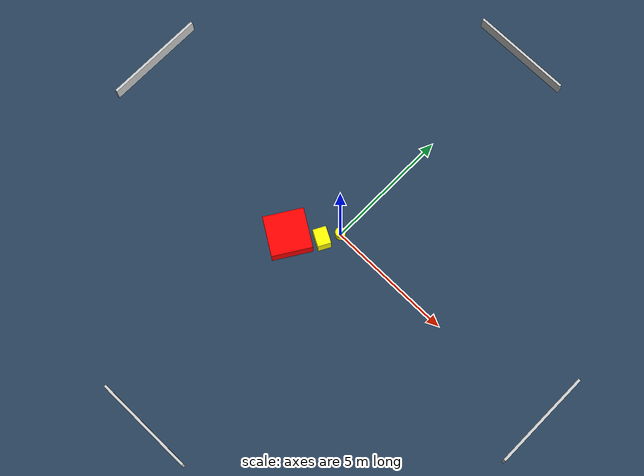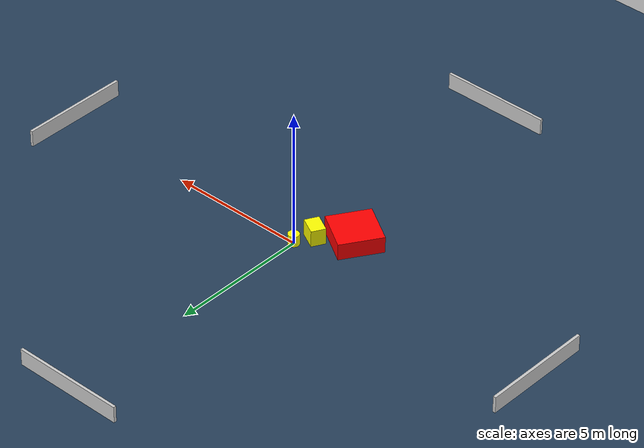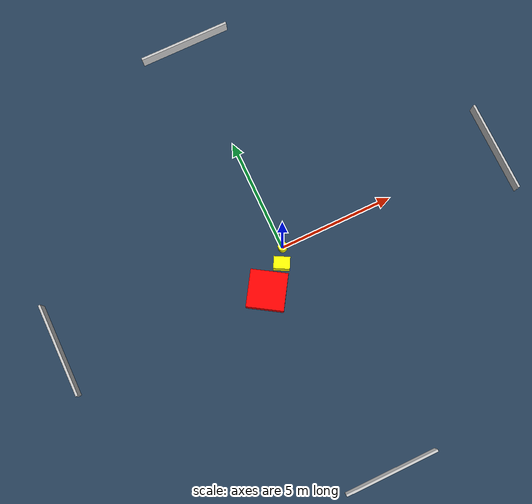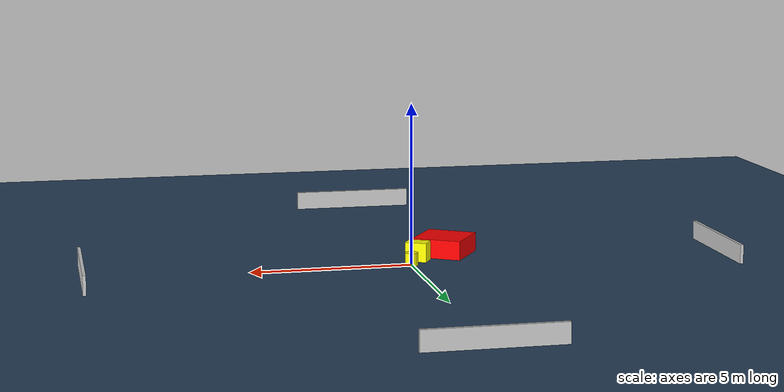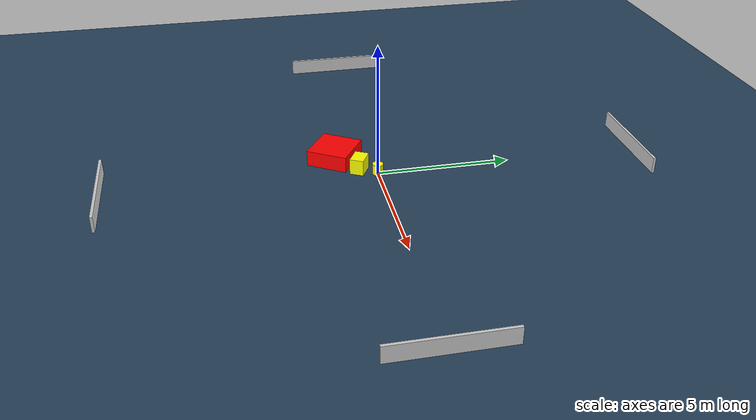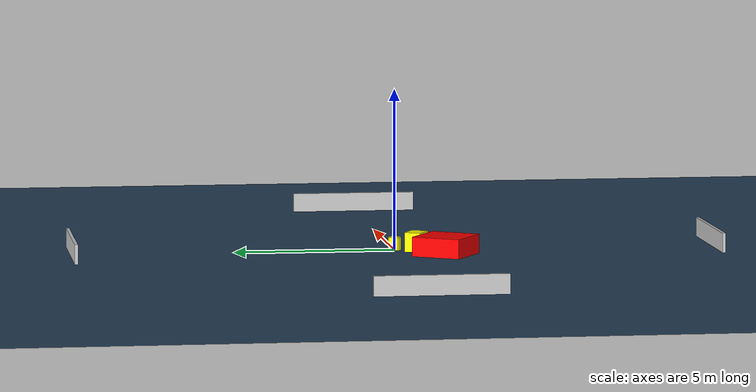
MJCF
<?xml version="1.0" ?>
<mujoco model="generated_environment">
  <option timestep="0.01" integrator="RK4" cone="elliptic"/>
  <default>
    <geom density="1"/>
  </default>
  <asset>
    <texture builtin="gradient" height="3072" name="skybox" rgb1="0.3 0.5 0.7" rgb2="0 0 0" type="skybox" width="512"/>
    <texture builtin="checker" height="300" name="groundplane" rgb1="0.2 0.3 0.4" rgb2="0.1 0.2 0.3" type="2d" width="300"/>
    <material name="groundplane" reflectance="0.2" texrepeat="5 5" texture="groundplane"/>
  </asset>
  <worldbody>
    <light dir="0 0 -1" directional="true" pos="0 0 1.5"/>
    <geom condim="3" friction="0.5 0.005 0.001" material="groundplane" name="floor" pos="0 0 0" size="0 0 0.05" type="plane"/>
    <body name="walls">
      <geom name="wall_1" condim="4" pos="-10.0 0.0 0.3" rgba="0.800000011920929 0.800000011920929 0.800000011920929 1.0" size="0.05 2.0 0.3" type="box"/>
      <geom name="wall_2" condim="4" pos="10.0 0.0 0.3" rgba="0.800000011920929 0.800000011920929 0.800000011920929 1.0" size="0.05 2.0 0.3" type="box"/>
      <geom name="wall_3" condim="4" pos="0.0 -10.0 0.3" rgba="0.800000011920929 0.800000011920929 0.800000011920929 1.0" size="2.0 0.05 0.3" type="box"/>
      <geom name="wall_4" condim="4" pos="0.0 10.0 0.3" rgba="0.800000011920929 0.800000011920929 0.800000011920929 1.0" size="2.0 0.05 0.3" type="box"/>
    </body>
    <body name="robot">
      <joint name="joint_x" type="slide" pos="0 0 0" axis="1 0 0"/>
      <joint name="joint_y" type="slide" pos="0 0 0" axis="0 1 0"/>
      <geom name="robot" type="cylinder" pos="0.0 0.0 0.2" size="0.2 0.2 0.0" mass="5.0" friction="1.0 0.005 0.0001" condim="4" rgba="1.0 1.0 0.0 1.0"/>
    </body>
    <body name="obstacle_1_movable">
      <geom name="obstacle_1_movable" condim="4" pos="-0.3389369784778543 -0.6348067765303814 0.3" euler="0 0 241.62813028571992" friction="0.0 0.005 0.001" rgba="1.0 1.0 0.0 1.0" size="0.2587826544740965 0.3429183060447086 0.3" type="box" mass="0.1"/>
      <joint type="free"/>
    </body>
    <body name="obstacle_2_static">
      <geom name="obstacle_2_static" condim="4" pos="-1.3641446559007007 -1.4000589477220267 0.3" euler="0 0 147.59111275391714" friction="0.0 0.005 0.001" rgba="1.0 0.0 0.0 1.0" size="0.7833252009540144 0.7851032030791583 0.3" type="box"/>
    </body>
  </worldbody>
  <actuator>
    <motor name="actuator_x" joint="joint_x" gear="1" ctrlrange="-1 1"/>
    <motor name="actuator_y" joint="joint_y" gear="1" ctrlrange="-1 1"/>
  </actuator>
</mujoco>
